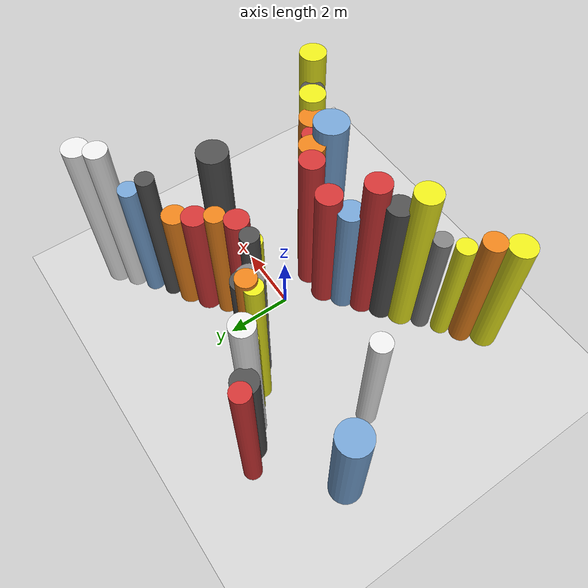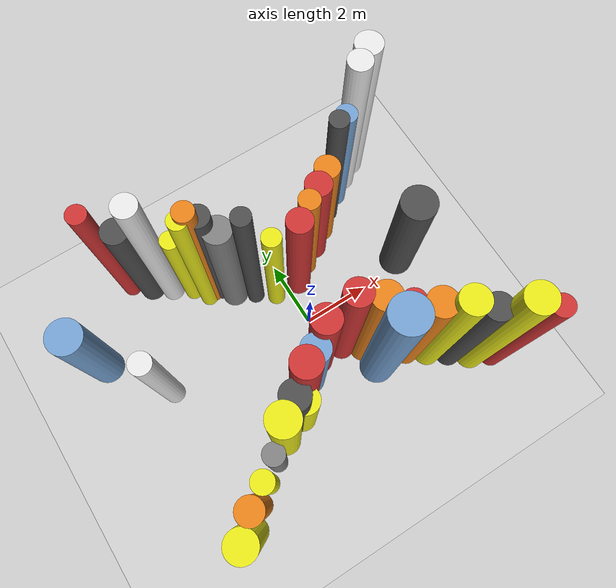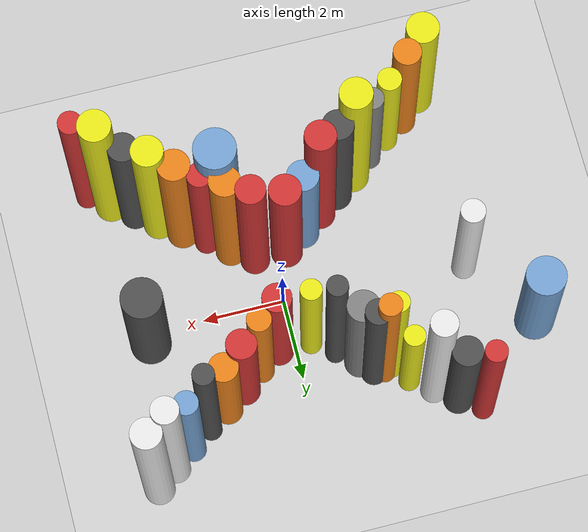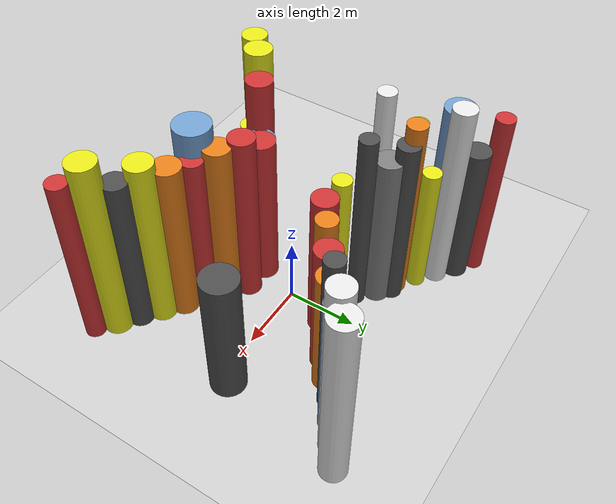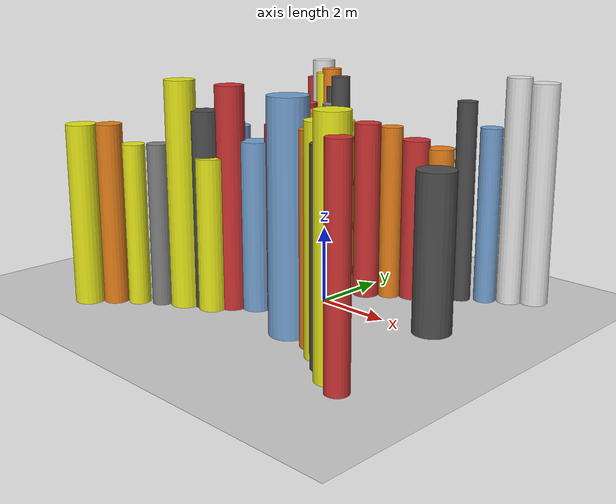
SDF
<?xml version='1.0'?>
<sdf version='1.6'>
  <world name='routeA_rl_v1__dense_recovery__rl_val__bottleneck_corridor__000103'>
    <!-- Sun light -->
    <light name='sun' type='directional'>
      <cast_shadows>1</cast_shadows>
      <pose>0 0 10 0 0 0</pose>
      <diffuse>0.8 0.8 0.8 1</diffuse>
      <specular>0.2 0.2 0.2 1</specular>
      <attenuation>
        <range>1000</range>
        <constant>0.9</constant>
        <linear>0.01</linear>
        <quadratic>0.001</quadratic>
      </attenuation>
      <direction>-0.5 0.1 -0.9</direction>
    </light>

    <!-- Ground plane -->
    <model name='ground_plane'>
      <static>1</static>
      <link name='link'>
        <collision name='collision'>
          <geometry>
            <plane>
              <normal>0 0 1</normal>
              <size>100 100</size>
            </plane>
          </geometry>
          <surface>
            <contact>
              <collide_bitmask>65535</collide_bitmask>
              <ode/>
            </contact>
            <friction>
              <ode>
                <mu>100</mu>
                <mu2>50</mu2>
              </ode>
              <torsional><ode/></torsional>
            </friction>
            <bounce/>
          </surface>
          <max_contacts>10</max_contacts>
        </collision>
        <visual name='visual'>
          <cast_shadows>0</cast_shadows>
          <geometry>
            <plane>
              <normal>0 0 1</normal>
              <size>100 100</size>
            </plane>
          </geometry>
          <material>
            <script>
              <uri>file://media/materials/scripts/gazebo.material</uri>
              <n>Gazebo/Grey</n>
            </script>
          </material>
        </visual>
      </link>
    </model>

    <!-- Environment -->
    <magnetic_field>6e-06 2.3e-05 -4.2e-05</magnetic_field>
    <atmosphere type='adiabatic'/>
    <physics name='default_physics' default='0' type='ode'>
      <gravity>0 0 -9.8</gravity>
      <max_step_size>0.004</max_step_size>
      <real_time_factor>1</real_time_factor>
      <real_time_update_rate>250</real_time_update_rate>
    </physics>
    <scene>
      <ambient>0.4 0.4 0.4 1</ambient>
      <background>0.7 0.7 0.7 1</background>
      <shadows>1</shadows>
    </scene>
    <wind/>
    <spherical_coordinates>
      <surface_model>EARTH_WGS84</surface_model>
      <latitude_deg>0</latitude_deg>
      <longitude_deg>0</longitude_deg>
      <elevation>0</elevation>
      <heading_deg>0</heading_deg>
    </spherical_coordinates>

    <!-- ============ OBSTACLES (40) ============ -->
    <model name='funnel_l_0'>
      <static>1</static>
      <link name='link'>
        <visual name='visual'>
          <geometry>
            <cylinder>
              <radius>0.3390</radius>
              <length>4.7372</length>
            </cylinder>
          </geometry>
          <material>
            <script>
              <n>Gazebo/Orange</n>
              <uri>file://media/materials/scripts/gazebo.material</uri>
            </script>
            <ambient>0.9 0.5 0.1 1</ambient>
          </material>
        </visual>
        <collision name='collision'>
          <geometry>
            <cylinder>
              <radius>0.3390</radius>
              <length>4.7372</length>
            </cylinder>
          </geometry>
          <max_contacts>10</max_contacts>
          <surface>
            <contact><ode/></contact>
            <bounce/>
            <friction>
              <ode><mu>1</mu><mu2>1</mu2></ode>
              <torsional><ode/></torsional>
            </friction>
          </surface>
        </collision>
      </link>
      <pose>-4.0000 -3.8000 2.3686 0 0 0.0000</pose>
    </model>

    <model name='funnel_r_0'>
      <static>1</static>
      <link name='link'>
        <visual name='visual'>
          <geometry>
            <cylinder>
              <radius>0.2659</radius>
              <length>5.3199</length>
            </cylinder>
          </geometry>
          <material>
            <script>
              <n>Gazebo/Red</n>
              <uri>file://media/materials/scripts/gazebo.material</uri>
            </script>
            <ambient>0.8 0.2 0.2 1</ambient>
          </material>
        </visual>
        <collision name='collision'>
          <geometry>
            <cylinder>
              <radius>0.2659</radius>
              <length>5.3199</length>
            </cylinder>
          </geometry>
          <max_contacts>10</max_contacts>
          <surface>
            <contact><ode/></contact>
            <bounce/>
            <friction>
              <ode><mu>1</mu><mu2>1</mu2></ode>
              <torsional><ode/></torsional>
            </friction>
          </surface>
        </collision>
      </link>
      <pose>-4.0000 3.8000 2.6599 0 0 0.0000</pose>
    </model>

    <model name='funnel_l_1'>
      <static>1</static>
      <link name='link'>
        <visual name='visual'>
          <geometry>
            <cylinder>
              <radius>0.2905</radius>
              <length>4.2332</length>
            </cylinder>
          </geometry>
          <material>
            <script>
              <n>Gazebo/Yellow</n>
              <uri>file://media/materials/scripts/gazebo.material</uri>
            </script>
            <ambient>0.9 0.9 0.1 1</ambient>
          </material>
        </visual>
        <collision name='collision'>
          <geometry>
            <cylinder>
              <radius>0.2905</radius>
              <length>4.2332</length>
            </cylinder>
          </geometry>
          <max_contacts>10</max_contacts>
          <surface>
            <contact><ode/></contact>
            <bounce/>
            <friction>
              <ode><mu>1</mu><mu2>1</mu2></ode>
              <torsional><ode/></torsional>
            </friction>
          </surface>
        </collision>
      </link>
      <pose>-3.4857 -3.4286 2.1166 0 0 0.0000</pose>
    </model>

    <model name='funnel_r_1'>
      <static>1</static>
      <link name='link'>
        <visual name='visual'>
          <geometry>
            <cylinder>
              <radius>0.3638</radius>
              <length>4.4512</length>
            </cylinder>
          </geometry>
          <material>
            <script>
              <n>Gazebo/DarkGrey</n>
              <uri>file://media/materials/scripts/gazebo.material</uri>
            </script>
            <ambient>0.3 0.3 0.3 1</ambient>
          </material>
        </visual>
        <collision name='collision'>
          <geometry>
            <cylinder>
              <radius>0.3638</radius>
              <length>4.4512</length>
            </cylinder>
          </geometry>
          <max_contacts>10</max_contacts>
          <surface>
            <contact><ode/></contact>
            <bounce/>
            <friction>
              <ode><mu>1</mu><mu2>1</mu2></ode>
              <torsional><ode/></torsional>
            </friction>
          </surface>
        </collision>
      </link>
      <pose>-3.4857 3.4286 2.2256 0 0 0.0000</pose>
    </model>

    <model name='funnel_l_2'>
      <static>1</static>
      <link name='link'>
        <visual name='visual'>
          <geometry>
            <cylinder>
              <radius>0.2776</radius>
              <length>4.2553</length>
            </cylinder>
          </geometry>
          <material>
            <script>
              <n>Gazebo/Grey</n>
              <uri>file://media/materials/scripts/gazebo.material</uri>
            </script>
            <ambient>0.5 0.5 0.5 1</ambient>
          </material>
        </visual>
        <collision name='collision'>
          <geometry>
            <cylinder>
              <radius>0.2776</radius>
              <length>4.2553</length>
            </cylinder>
          </geometry>
          <max_contacts>10</max_contacts>
          <surface>
            <contact><ode/></contact>
            <bounce/>
            <friction>
              <ode><mu>1</mu><mu2>1</mu2></ode>
              <torsional><ode/></torsional>
            </friction>
          </surface>
        </collision>
      </link>
      <pose>-2.9714 -3.0571 2.1276 0 0 0.0000</pose>
    </model>

    <model name='funnel_r_2'>
      <static>1</static>
      <link name='link'>
        <visual name='visual'>
          <geometry>
            <cylinder>
              <radius>0.3240</radius>
              <length>5.9553</length>
            </cylinder>
          </geometry>
          <material>
            <script>
              <n>Gazebo/White</n>
              <uri>file://media/materials/scripts/gazebo.material</uri>
            </script>
            <ambient>0.9 0.9 0.9 1</ambient>
          </material>
        </visual>
        <collision name='collision'>
          <geometry>
            <cylinder>
              <radius>0.3240</radius>
              <length>5.9553</length>
            </cylinder>
          </geometry>
          <max_contacts>10</max_contacts>
          <surface>
            <contact><ode/></contact>
            <bounce/>
            <friction>
              <ode><mu>1</mu><mu2>1</mu2></ode>
              <torsional><ode/></torsional>
            </friction>
          </surface>
        </collision>
      </link>
      <pose>-2.9714 3.0571 2.9776 0 0 0.0000</pose>
    </model>

    <model name='funnel_l_3'>
      <static>1</static>
      <link name='link'>
        <visual name='visual'>
          <geometry>
            <cylinder>
              <radius>0.3952</radius>
              <length>5.8973</length>
            </cylinder>
          </geometry>
          <material>
            <script>
              <n>Gazebo/Yellow</n>
              <uri>file://media/materials/scripts/gazebo.material</uri>
            </script>
            <ambient>0.9 0.9 0.1 1</ambient>
          </material>
        </visual>
        <collision name='collision'>
          <geometry>
            <cylinder>
              <radius>0.3952</radius>
              <length>5.8973</length>
            </cylinder>
          </geometry>
          <max_contacts>10</max_contacts>
          <surface>
            <contact><ode/></contact>
            <bounce/>
            <friction>
              <ode><mu>1</mu><mu2>1</mu2></ode>
              <torsional><ode/></torsional>
            </friction>
          </surface>
        </collision>
      </link>
      <pose>-2.4571 -2.6857 2.9487 0 0 0.0000</pose>
    </model>

    <model name='funnel_r_3'>
      <static>1</static>
      <link name='link'>
        <visual name='visual'>
          <geometry>
            <cylinder>
              <radius>0.2582</radius>
              <length>4.0964</length>
            </cylinder>
          </geometry>
          <material>
            <script>
              <n>Gazebo/Yellow</n>
              <uri>file://media/materials/scripts/gazebo.material</uri>
            </script>
            <ambient>0.9 0.9 0.1 1</ambient>
          </material>
        </visual>
        <collision name='collision'>
          <geometry>
            <cylinder>
              <radius>0.2582</radius>
              <length>4.0964</length>
            </cylinder>
          </geometry>
          <max_contacts>10</max_contacts>
          <surface>
            <contact><ode/></contact>
            <bounce/>
            <friction>
              <ode><mu>1</mu><mu2>1</mu2></ode>
              <torsional><ode/></torsional>
            </friction>
          </surface>
        </collision>
      </link>
      <pose>-2.4571 2.6857 2.0482 0 0 0.0000</pose>
    </model>

    <model name='funnel_l_4'>
      <static>1</static>
      <link name='link'>
        <visual name='visual'>
          <geometry>
            <cylinder>
              <radius>0.3770</radius>
              <length>5.1388</length>
            </cylinder>
          </geometry>
          <material>
            <script>
              <n>Gazebo/DarkGrey</n>
              <uri>file://media/materials/scripts/gazebo.material</uri>
            </script>
            <ambient>0.3 0.3 0.3 1</ambient>
          </material>
        </visual>
        <collision name='collision'>
          <geometry>
            <cylinder>
              <radius>0.3770</radius>
              <length>5.1388</length>
            </cylinder>
          </geometry>
          <max_contacts>10</max_contacts>
          <surface>
            <contact><ode/></contact>
            <bounce/>
            <friction>
              <ode><mu>1</mu><mu2>1</mu2></ode>
              <torsional><ode/></torsional>
            </friction>
          </surface>
        </collision>
      </link>
      <pose>-1.9429 -2.3143 2.5694 0 0 0.0000</pose>
    </model>

    <model name='funnel_r_4'>
      <static>1</static>
      <link name='link'>
        <visual name='visual'>
          <geometry>
            <cylinder>
              <radius>0.2744</radius>
              <length>5.8317</length>
            </cylinder>
          </geometry>
          <material>
            <script>
              <n>Gazebo/Orange</n>
              <uri>file://media/materials/scripts/gazebo.material</uri>
            </script>
            <ambient>0.9 0.5 0.1 1</ambient>
          </material>
        </visual>
        <collision name='collision'>
          <geometry>
            <cylinder>
              <radius>0.2744</radius>
              <length>5.8317</length>
            </cylinder>
          </geometry>
          <max_contacts>10</max_contacts>
          <surface>
            <contact><ode/></contact>
            <bounce/>
            <friction>
              <ode><mu>1</mu><mu2>1</mu2></ode>
              <torsional><ode/></torsional>
            </friction>
          </surface>
        </collision>
      </link>
      <pose>-1.9429 2.3143 2.9159 0 0 0.0000</pose>
    </model>

    <model name='funnel_l_5'>
      <static>1</static>
      <link name='link'>
        <visual name='visual'>
          <geometry>
            <cylinder>
              <radius>0.3774</radius>
              <length>5.7852</length>
            </cylinder>
          </geometry>
          <material>
            <script>
              <n>Gazebo/Red</n>
              <uri>file://media/materials/scripts/gazebo.material</uri>
            </script>
            <ambient>0.8 0.2 0.2 1</ambient>
          </material>
        </visual>
        <collision name='collision'>
          <geometry>
            <cylinder>
              <radius>0.3774</radius>
              <length>5.7852</length>
            </cylinder>
          </geometry>
          <max_contacts>10</max_contacts>
          <surface>
            <contact><ode/></contact>
            <bounce/>
            <friction>
              <ode><mu>1</mu><mu2>1</mu2></ode>
              <torsional><ode/></torsional>
            </friction>
          </surface>
        </collision>
      </link>
      <pose>-1.4286 -1.9429 2.8926 0 0 0.0000</pose>
    </model>

    <model name='funnel_r_5'>
      <static>1</static>
      <link name='link'>
        <visual name='visual'>
          <geometry>
            <cylinder>
              <radius>0.3835</radius>
              <length>4.9168</length>
            </cylinder>
          </geometry>
          <material>
            <script>
              <n>Gazebo/Grey</n>
              <uri>file://media/materials/scripts/gazebo.material</uri>
            </script>
            <ambient>0.5 0.5 0.5 1</ambient>
          </material>
        </visual>
        <collision name='collision'>
          <geometry>
            <cylinder>
              <radius>0.3835</radius>
              <length>4.9168</length>
            </cylinder>
          </geometry>
          <max_contacts>10</max_contacts>
          <surface>
            <contact><ode/></contact>
            <bounce/>
            <friction>
              <ode><mu>1</mu><mu2>1</mu2></ode>
              <torsional><ode/></torsional>
            </friction>
          </surface>
        </collision>
      </link>
      <pose>-1.4286 1.9429 2.4584 0 0 0.0000</pose>
    </model>

    <model name='funnel_l_6'>
      <static>1</static>
      <link name='link'>
        <visual name='visual'>
          <geometry>
            <cylinder>
              <radius>0.3860</radius>
              <length>4.3995</length>
            </cylinder>
          </geometry>
          <material>
            <script>
              <n>Gazebo/Blue</n>
              <uri>file://media/materials/scripts/gazebo.material</uri>
            </script>
            <ambient>0.447 0.624 0.812 1</ambient>
          </material>
        </visual>
        <collision name='collision'>
          <geometry>
            <cylinder>
              <radius>0.3860</radius>
              <length>4.3995</length>
            </cylinder>
          </geometry>
          <max_contacts>10</max_contacts>
          <surface>
            <contact><ode/></contact>
            <bounce/>
            <friction>
              <ode><mu>1</mu><mu2>1</mu2></ode>
              <torsional><ode/></torsional>
            </friction>
          </surface>
        </collision>
      </link>
      <pose>-0.9143 -1.5714 2.1998 0 0 0.0000</pose>
    </model>

    <model name='funnel_r_6'>
      <static>1</static>
      <link name='link'>
        <visual name='visual'>
          <geometry>
            <cylinder>
              <radius>0.2541</radius>
              <length>5.7434</length>
            </cylinder>
          </geometry>
          <material>
            <script>
              <n>Gazebo/DarkGrey</n>
              <uri>file://media/materials/scripts/gazebo.material</uri>
            </script>
            <ambient>0.3 0.3 0.3 1</ambient>
          </material>
        </visual>
        <collision name='collision'>
          <geometry>
            <cylinder>
              <radius>0.2541</radius>
              <length>5.7434</length>
            </cylinder>
          </geometry>
          <max_contacts>10</max_contacts>
          <surface>
            <contact><ode/></contact>
            <bounce/>
            <friction>
              <ode><mu>1</mu><mu2>1</mu2></ode>
              <torsional><ode/></torsional>
            </friction>
          </surface>
        </collision>
      </link>
      <pose>-0.9143 1.5714 2.8717 0 0 0.0000</pose>
    </model>

    <model name='funnel_l_7'>
      <static>1</static>
      <link name='link'>
        <visual name='visual'>
          <geometry>
            <cylinder>
              <radius>0.3898</radius>
              <length>4.8210</length>
            </cylinder>
          </geometry>
          <material>
            <script>
              <n>Gazebo/Red</n>
              <uri>file://media/materials/scripts/gazebo.material</uri>
            </script>
            <ambient>0.8 0.2 0.2 1</ambient>
          </material>
        </visual>
        <collision name='collision'>
          <geometry>
            <cylinder>
              <radius>0.3898</radius>
              <length>4.8210</length>
            </cylinder>
          </geometry>
          <max_contacts>10</max_contacts>
          <surface>
            <contact><ode/></contact>
            <bounce/>
            <friction>
              <ode><mu>1</mu><mu2>1</mu2></ode>
              <torsional><ode/></torsional>
            </friction>
          </surface>
        </collision>
      </link>
      <pose>-0.4000 -1.2000 2.4105 0 0 0.0000</pose>
    </model>

    <model name='funnel_r_7'>
      <static>1</static>
      <link name='link'>
        <visual name='visual'>
          <geometry>
            <cylinder>
              <radius>0.2602</radius>
              <length>4.6596</length>
            </cylinder>
          </geometry>
          <material>
            <script>
              <n>Gazebo/Yellow</n>
              <uri>file://media/materials/scripts/gazebo.material</uri>
            </script>
            <ambient>0.9 0.9 0.1 1</ambient>
          </material>
        </visual>
        <collision name='collision'>
          <geometry>
            <cylinder>
              <radius>0.2602</radius>
              <length>4.6596</length>
            </cylinder>
          </geometry>
          <max_contacts>10</max_contacts>
          <surface>
            <contact><ode/></contact>
            <bounce/>
            <friction>
              <ode><mu>1</mu><mu2>1</mu2></ode>
              <torsional><ode/></torsional>
            </friction>
          </surface>
        </collision>
      </link>
      <pose>-0.4000 1.2000 2.3298 0 0 0.0000</pose>
    </model>

    <model name='funnel_out_l_0'>
      <static>1</static>
      <link name='link'>
        <visual name='visual'>
          <geometry>
            <cylinder>
              <radius>0.3619</radius>
              <length>5.4518</length>
            </cylinder>
          </geometry>
          <material>
            <script>
              <n>Gazebo/Red</n>
              <uri>file://media/materials/scripts/gazebo.material</uri>
            </script>
            <ambient>0.8 0.2 0.2 1</ambient>
          </material>
        </visual>
        <collision name='collision'>
          <geometry>
            <cylinder>
              <radius>0.3619</radius>
              <length>5.4518</length>
            </cylinder>
          </geometry>
          <max_contacts>10</max_contacts>
          <surface>
            <contact><ode/></contact>
            <bounce/>
            <friction>
              <ode><mu>1</mu><mu2>1</mu2></ode>
              <torsional><ode/></torsional>
            </friction>
          </surface>
        </collision>
      </link>
      <pose>0.4000 -1.2000 2.7259 0 0 0.0000</pose>
    </model>

    <model name='funnel_out_r_0'>
      <static>1</static>
      <link name='link'>
        <visual name='visual'>
          <geometry>
            <cylinder>
              <radius>0.3518</radius>
              <length>4.6799</length>
            </cylinder>
          </geometry>
          <material>
            <script>
              <n>Gazebo/Red</n>
              <uri>file://media/materials/scripts/gazebo.material</uri>
            </script>
            <ambient>0.8 0.2 0.2 1</ambient>
          </material>
        </visual>
        <collision name='collision'>
          <geometry>
            <cylinder>
              <radius>0.3518</radius>
              <length>4.6799</length>
            </cylinder>
          </geometry>
          <max_contacts>10</max_contacts>
          <surface>
            <contact><ode/></contact>
            <bounce/>
            <friction>
              <ode><mu>1</mu><mu2>1</mu2></ode>
              <torsional><ode/></torsional>
            </friction>
          </surface>
        </collision>
      </link>
      <pose>0.4000 1.2000 2.3400 0 0 0.0000</pose>
    </model>

    <model name='funnel_out_l_1'>
      <static>1</static>
      <link name='link'>
        <visual name='visual'>
          <geometry>
            <cylinder>
              <radius>0.3798</radius>
              <length>5.3452</length>
            </cylinder>
          </geometry>
          <material>
            <script>
              <n>Gazebo/Orange</n>
              <uri>file://media/materials/scripts/gazebo.material</uri>
            </script>
            <ambient>0.9 0.5 0.1 1</ambient>
          </material>
        </visual>
        <collision name='collision'>
          <geometry>
            <cylinder>
              <radius>0.3798</radius>
              <length>5.3452</length>
            </cylinder>
          </geometry>
          <max_contacts>10</max_contacts>
          <surface>
            <contact><ode/></contact>
            <bounce/>
            <friction>
              <ode><mu>1</mu><mu2>1</mu2></ode>
              <torsional><ode/></torsional>
            </friction>
          </surface>
        </collision>
      </link>
      <pose>0.9143 -1.5714 2.6726 0 0 0.0000</pose>
    </model>

    <model name='funnel_out_r_1'>
      <static>1</static>
      <link name='link'>
        <visual name='visual'>
          <geometry>
            <cylinder>
              <radius>0.2928</radius>
              <length>4.6004</length>
            </cylinder>
          </geometry>
          <material>
            <script>
              <n>Gazebo/Orange</n>
              <uri>file://media/materials/scripts/gazebo.material</uri>
            </script>
            <ambient>0.9 0.5 0.1 1</ambient>
          </material>
        </visual>
        <collision name='collision'>
          <geometry>
            <cylinder>
              <radius>0.2928</radius>
              <length>4.6004</length>
            </cylinder>
          </geometry>
          <max_contacts>10</max_contacts>
          <surface>
            <contact><ode/></contact>
            <bounce/>
            <friction>
              <ode><mu>1</mu><mu2>1</mu2></ode>
              <torsional><ode/></torsional>
            </friction>
          </surface>
        </collision>
      </link>
      <pose>0.9143 1.5714 2.3002 0 0 0.0000</pose>
    </model>

    <model name='funnel_out_l_2'>
      <static>1</static>
      <link name='link'>
        <visual name='visual'>
          <geometry>
            <cylinder>
              <radius>0.2998</radius>
              <length>5.1124</length>
            </cylinder>
          </geometry>
          <material>
            <script>
              <n>Gazebo/Red</n>
              <uri>file://media/materials/scripts/gazebo.material</uri>
            </script>
            <ambient>0.8 0.2 0.2 1</ambient>
          </material>
        </visual>
        <collision name='collision'>
          <geometry>
            <cylinder>
              <radius>0.2998</radius>
              <length>5.1124</length>
            </cylinder>
          </geometry>
          <max_contacts>10</max_contacts>
          <surface>
            <contact><ode/></contact>
            <bounce/>
            <friction>
              <ode><mu>1</mu><mu2>1</mu2></ode>
              <torsional><ode/></torsional>
            </friction>
          </surface>
        </collision>
      </link>
      <pose>1.4286 -1.9429 2.5562 0 0 0.0000</pose>
    </model>

    <model name='funnel_out_r_2'>
      <static>1</static>
      <link name='link'>
        <visual name='visual'>
          <geometry>
            <cylinder>
              <radius>0.3661</radius>
              <length>4.2683</length>
            </cylinder>
          </geometry>
          <material>
            <script>
              <n>Gazebo/Red</n>
              <uri>file://media/materials/scripts/gazebo.material</uri>
            </script>
            <ambient>0.8 0.2 0.2 1</ambient>
          </material>
        </visual>
        <collision name='collision'>
          <geometry>
            <cylinder>
              <radius>0.3661</radius>
              <length>4.2683</length>
            </cylinder>
          </geometry>
          <max_contacts>10</max_contacts>
          <surface>
            <contact><ode/></contact>
            <bounce/>
            <friction>
              <ode><mu>1</mu><mu2>1</mu2></ode>
              <torsional><ode/></torsional>
            </friction>
          </surface>
        </collision>
      </link>
      <pose>1.4286 1.9429 2.1342 0 0 0.0000</pose>
    </model>

    <model name='funnel_out_l_3'>
      <static>1</static>
      <link name='link'>
        <visual name='visual'>
          <geometry>
            <cylinder>
              <radius>0.3909</radius>
              <length>5.1257</length>
            </cylinder>
          </geometry>
          <material>
            <script>
              <n>Gazebo/Orange</n>
              <uri>file://media/materials/scripts/gazebo.material</uri>
            </script>
            <ambient>0.9 0.5 0.1 1</ambient>
          </material>
        </visual>
        <collision name='collision'>
          <geometry>
            <cylinder>
              <radius>0.3909</radius>
              <length>5.1257</length>
            </cylinder>
          </geometry>
          <max_contacts>10</max_contacts>
          <surface>
            <contact><ode/></contact>
            <bounce/>
            <friction>
              <ode><mu>1</mu><mu2>1</mu2></ode>
              <torsional><ode/></torsional>
            </friction>
          </surface>
        </collision>
      </link>
      <pose>1.9429 -2.3143 2.5629 0 0 0.0000</pose>
    </model>

    <model name='funnel_out_r_3'>
      <static>1</static>
      <link name='link'>
        <visual name='visual'>
          <geometry>
            <cylinder>
              <radius>0.3529</radius>
              <length>4.0607</length>
            </cylinder>
          </geometry>
          <material>
            <script>
              <n>Gazebo/Orange</n>
              <uri>file://media/materials/scripts/gazebo.material</uri>
            </script>
            <ambient>0.9 0.5 0.1 1</ambient>
          </material>
        </visual>
        <collision name='collision'>
          <geometry>
            <cylinder>
              <radius>0.3529</radius>
              <length>4.0607</length>
            </cylinder>
          </geometry>
          <max_contacts>10</max_contacts>
          <surface>
            <contact><ode/></contact>
            <bounce/>
            <friction>
              <ode><mu>1</mu><mu2>1</mu2></ode>
              <torsional><ode/></torsional>
            </friction>
          </surface>
        </collision>
      </link>
      <pose>1.9429 2.3143 2.0303 0 0 0.0000</pose>
    </model>

    <model name='funnel_out_l_4'>
      <static>1</static>
      <link name='link'>
        <visual name='visual'>
          <geometry>
            <cylinder>
              <radius>0.3862</radius>
              <length>5.4325</length>
            </cylinder>
          </geometry>
          <material>
            <script>
              <n>Gazebo/Yellow</n>
              <uri>file://media/materials/scripts/gazebo.material</uri>
            </script>
            <ambient>0.9 0.9 0.1 1</ambient>
          </material>
        </visual>
        <collision name='collision'>
          <geometry>
            <cylinder>
              <radius>0.3862</radius>
              <length>5.4325</length>
            </cylinder>
          </geometry>
          <max_contacts>10</max_contacts>
          <surface>
            <contact><ode/></contact>
            <bounce/>
            <friction>
              <ode><mu>1</mu><mu2>1</mu2></ode>
              <torsional><ode/></torsional>
            </friction>
          </surface>
        </collision>
      </link>
      <pose>2.4571 -2.6857 2.7162 0 0 0.0000</pose>
    </model>

    <model name='funnel_out_r_4'>
      <static>1</static>
      <link name='link'>
        <visual name='visual'>
          <geometry>
            <cylinder>
              <radius>0.2620</radius>
              <length>5.2981</length>
            </cylinder>
          </geometry>
          <material>
            <script>
              <n>Gazebo/DarkGrey</n>
              <uri>file://media/materials/scripts/gazebo.material</uri>
            </script>
            <ambient>0.3 0.3 0.3 1</ambient>
          </material>
        </visual>
        <collision name='collision'>
          <geometry>
            <cylinder>
              <radius>0.2620</radius>
              <length>5.2981</length>
            </cylinder>
          </geometry>
          <max_contacts>10</max_contacts>
          <surface>
            <contact><ode/></contact>
            <bounce/>
            <friction>
              <ode><mu>1</mu><mu2>1</mu2></ode>
              <torsional><ode/></torsional>
            </friction>
          </surface>
        </collision>
      </link>
      <pose>2.4571 2.6857 2.6491 0 0 0.0000</pose>
    </model>

    <model name='funnel_out_l_5'>
      <static>1</static>
      <link name='link'>
        <visual name='visual'>
          <geometry>
            <cylinder>
              <radius>0.3601</radius>
              <length>5.0372</length>
            </cylinder>
          </geometry>
          <material>
            <script>
              <n>Gazebo/DarkGrey</n>
              <uri>file://media/materials/scripts/gazebo.material</uri>
            </script>
            <ambient>0.3 0.3 0.3 1</ambient>
          </material>
        </visual>
        <collision name='collision'>
          <geometry>
            <cylinder>
              <radius>0.3601</radius>
              <length>5.0372</length>
            </cylinder>
          </geometry>
          <max_contacts>10</max_contacts>
          <surface>
            <contact><ode/></contact>
            <bounce/>
            <friction>
              <ode><mu>1</mu><mu2>1</mu2></ode>
              <torsional><ode/></torsional>
            </friction>
          </surface>
        </collision>
      </link>
      <pose>2.9714 -3.0571 2.5186 0 0 0.0000</pose>
    </model>

    <model name='funnel_out_r_5'>
      <static>1</static>
      <link name='link'>
        <visual name='visual'>
          <geometry>
            <cylinder>
              <radius>0.2914</radius>
              <length>4.6348</length>
            </cylinder>
          </geometry>
          <material>
            <script>
              <n>Gazebo/Blue</n>
              <uri>file://media/materials/scripts/gazebo.material</uri>
            </script>
            <ambient>0.447 0.624 0.812 1</ambient>
          </material>
        </visual>
        <collision name='collision'>
          <geometry>
            <cylinder>
              <radius>0.2914</radius>
              <length>4.6348</length>
            </cylinder>
          </geometry>
          <max_contacts>10</max_contacts>
          <surface>
            <contact><ode/></contact>
            <bounce/>
            <friction>
              <ode><mu>1</mu><mu2>1</mu2></ode>
              <torsional><ode/></torsional>
            </friction>
          </surface>
        </collision>
      </link>
      <pose>2.9714 3.0571 2.3174 0 0 0.0000</pose>
    </model>

    <model name='funnel_out_l_6'>
      <static>1</static>
      <link name='link'>
        <visual name='visual'>
          <geometry>
            <cylinder>
              <radius>0.3994</radius>
              <length>5.8460</length>
            </cylinder>
          </geometry>
          <material>
            <script>
              <n>Gazebo/Yellow</n>
              <uri>file://media/materials/scripts/gazebo.material</uri>
            </script>
            <ambient>0.9 0.9 0.1 1</ambient>
          </material>
        </visual>
        <collision name='collision'>
          <geometry>
            <cylinder>
              <radius>0.3994</radius>
              <length>5.8460</length>
            </cylinder>
          </geometry>
          <max_contacts>10</max_contacts>
          <surface>
            <contact><ode/></contact>
            <bounce/>
            <friction>
              <ode><mu>1</mu><mu2>1</mu2></ode>
              <torsional><ode/></torsional>
            </friction>
          </surface>
        </collision>
      </link>
      <pose>3.4857 -3.4286 2.9230 0 0 0.0000</pose>
    </model>

    <model name='funnel_out_r_6'>
      <static>1</static>
      <link name='link'>
        <visual name='visual'>
          <geometry>
            <cylinder>
              <radius>0.3291</radius>
              <length>5.9279</length>
            </cylinder>
          </geometry>
          <material>
            <script>
              <n>Gazebo/White</n>
              <uri>file://media/materials/scripts/gazebo.material</uri>
            </script>
            <ambient>0.9 0.9 0.9 1</ambient>
          </material>
        </visual>
        <collision name='collision'>
          <geometry>
            <cylinder>
              <radius>0.3291</radius>
              <length>5.9279</length>
            </cylinder>
          </geometry>
          <max_contacts>10</max_contacts>
          <surface>
            <contact><ode/></contact>
            <bounce/>
            <friction>
              <ode><mu>1</mu><mu2>1</mu2></ode>
              <torsional><ode/></torsional>
            </friction>
          </surface>
        </collision>
      </link>
      <pose>3.4857 3.4286 2.9639 0 0 0.0000</pose>
    </model>

    <model name='funnel_out_l_7'>
      <static>1</static>
      <link name='link'>
        <visual name='visual'>
          <geometry>
            <cylinder>
              <radius>0.2870</radius>
              <length>5.4015</length>
            </cylinder>
          </geometry>
          <material>
            <script>
              <n>Gazebo/Red</n>
              <uri>file://media/materials/scripts/gazebo.material</uri>
            </script>
            <ambient>0.8 0.2 0.2 1</ambient>
          </material>
        </visual>
        <collision name='collision'>
          <geometry>
            <cylinder>
              <radius>0.2870</radius>
              <length>5.4015</length>
            </cylinder>
          </geometry>
          <max_contacts>10</max_contacts>
          <surface>
            <contact><ode/></contact>
            <bounce/>
            <friction>
              <ode><mu>1</mu><mu2>1</mu2></ode>
              <torsional><ode/></torsional>
            </friction>
          </surface>
        </collision>
      </link>
      <pose>4.0000 -3.8000 2.7008 0 0 0.0000</pose>
    </model>

    <model name='funnel_out_r_7'>
      <static>1</static>
      <link name='link'>
        <visual name='visual'>
          <geometry>
            <cylinder>
              <radius>0.3707</radius>
              <length>5.7938</length>
            </cylinder>
          </geometry>
          <material>
            <script>
              <n>Gazebo/White</n>
              <uri>file://media/materials/scripts/gazebo.material</uri>
            </script>
            <ambient>0.9 0.9 0.9 1</ambient>
          </material>
        </visual>
        <collision name='collision'>
          <geometry>
            <cylinder>
              <radius>0.3707</radius>
              <length>5.7938</length>
            </cylinder>
          </geometry>
          <max_contacts>10</max_contacts>
          <surface>
            <contact><ode/></contact>
            <bounce/>
            <friction>
              <ode><mu>1</mu><mu2>1</mu2></ode>
              <torsional><ode/></torsional>
            </friction>
          </surface>
        </collision>
      </link>
      <pose>4.0000 3.8000 2.8969 0 0 0.0000</pose>
    </model>

    <model name='bn_scatter_0'>
      <static>1</static>
      <link name='link'>
        <visual name='visual'>
          <geometry>
            <cylinder>
              <radius>0.4822</radius>
              <length>3.8046</length>
            </cylinder>
          </geometry>
          <material>
            <script>
              <n>Gazebo/Blue</n>
              <uri>file://media/materials/scripts/gazebo.material</uri>
            </script>
            <ambient>0.447 0.624 0.812 1</ambient>
          </material>
        </visual>
        <collision name='collision'>
          <geometry>
            <cylinder>
              <radius>0.4822</radius>
              <length>3.8046</length>
            </cylinder>
          </geometry>
          <max_contacts>10</max_contacts>
          <surface>
            <contact><ode/></contact>
            <bounce/>
            <friction>
              <ode><mu>1</mu><mu2>1</mu2></ode>
              <torsional><ode/></torsional>
            </friction>
          </surface>
        </collision>
      </link>
      <pose>-5.7952 1.9863 1.9023 0 0 0.0000</pose>
    </model>

    <model name='bn_scatter_1'>
      <static>1</static>
      <link name='link'>
        <visual name='visual'>
          <geometry>
            <cylinder>
              <radius>0.2537</radius>
              <length>5.7089</length>
            </cylinder>
          </geometry>
          <material>
            <script>
              <n>Gazebo/Yellow</n>
              <uri>file://media/materials/scripts/gazebo.material</uri>
            </script>
            <ambient>0.9 0.9 0.1 1</ambient>
          </material>
        </visual>
        <collision name='collision'>
          <geometry>
            <cylinder>
              <radius>0.2537</radius>
              <length>5.7089</length>
            </cylinder>
          </geometry>
          <max_contacts>10</max_contacts>
          <surface>
            <contact><ode/></contact>
            <bounce/>
            <friction>
              <ode><mu>1</mu><mu2>1</mu2></ode>
              <torsional><ode/></torsional>
            </friction>
          </surface>
        </collision>
      </link>
      <pose>-2.1520 2.2600 2.8544 0 0 0.0000</pose>
    </model>

    <model name='bn_scatter_2'>
      <static>1</static>
      <link name='link'>
        <visual name='visual'>
          <geometry>
            <cylinder>
              <radius>0.4980</radius>
              <length>4.0332</length>
            </cylinder>
          </geometry>
          <material>
            <script>
              <n>Gazebo/DarkGrey</n>
              <uri>file://media/materials/scripts/gazebo.material</uri>
            </script>
            <ambient>0.3 0.3 0.3 1</ambient>
          </material>
        </visual>
        <collision name='collision'>
          <geometry>
            <cylinder>
              <radius>0.4980</radius>
              <length>4.0332</length>
            </cylinder>
          </geometry>
          <max_contacts>10</max_contacts>
          <surface>
            <contact><ode/></contact>
            <bounce/>
            <friction>
              <ode><mu>1</mu><mu2>1</mu2></ode>
              <torsional><ode/></torsional>
            </friction>
          </surface>
        </collision>
      </link>
      <pose>3.3679 0.2489 2.0166 0 0 0.0000</pose>
    </model>

    <model name='bn_scatter_3'>
      <static>1</static>
      <link name='link'>
        <visual name='visual'>
          <geometry>
            <cylinder>
              <radius>0.3669</radius>
              <length>3.9779</length>
            </cylinder>
          </geometry>
          <material>
            <script>
              <n>Gazebo/Yellow</n>
              <uri>file://media/materials/scripts/gazebo.material</uri>
            </script>
            <ambient>0.9 0.9 0.1 1</ambient>
          </material>
        </visual>
        <collision name='collision'>
          <geometry>
            <cylinder>
              <radius>0.3669</radius>
              <length>3.9779</length>
            </cylinder>
          </geometry>
          <max_contacts>10</max_contacts>
          <surface>
            <contact><ode/></contact>
            <bounce/>
            <friction>
              <ode><mu>1</mu><mu2>1</mu2></ode>
              <torsional><ode/></torsional>
            </friction>
          </surface>
        </collision>
      </link>
      <pose>-1.7124 -2.3923 1.9890 0 0 0.0000</pose>
    </model>

    <model name='bn_scatter_4'>
      <static>1</static>
      <link name='link'>
        <visual name='visual'>
          <geometry>
            <cylinder>
              <radius>0.5063</radius>
              <length>5.7813</length>
            </cylinder>
          </geometry>
          <material>
            <script>
              <n>Gazebo/Blue</n>
              <uri>file://media/materials/scripts/gazebo.material</uri>
            </script>
            <ambient>0.447 0.624 0.812 1</ambient>
          </material>
        </visual>
        <collision name='collision'>
          <geometry>
            <cylinder>
              <radius>0.5063</radius>
              <length>5.7813</length>
            </cylinder>
          </geometry>
          <max_contacts>10</max_contacts>
          <surface>
            <contact><ode/></contact>
            <bounce/>
            <friction>
              <ode><mu>1</mu><mu2>1</mu2></ode>
              <torsional><ode/></torsional>
            </friction>
          </surface>
        </collision>
      </link>
      <pose>0.9679 -2.2370 2.8906 0 0 0.0000</pose>
    </model>

    <model name='bn_scatter_5'>
      <static>1</static>
      <link name='link'>
        <visual name='visual'>
          <geometry>
            <cylinder>
              <radius>0.3952</radius>
              <length>4.7336</length>
            </cylinder>
          </geometry>
          <material>
            <script>
              <n>Gazebo/Yellow</n>
              <uri>file://media/materials/scripts/gazebo.material</uri>
            </script>
            <ambient>0.9 0.9 0.1 1</ambient>
          </material>
        </visual>
        <collision name='collision'>
          <geometry>
            <cylinder>
              <radius>0.3952</radius>
              <length>4.7336</length>
            </cylinder>
          </geometry>
          <max_contacts>10</max_contacts>
          <surface>
            <contact><ode/></contact>
            <bounce/>
            <friction>
              <ode><mu>1</mu><mu2>1</mu2></ode>
              <torsional><ode/></torsional>
            </friction>
          </surface>
        </collision>
      </link>
      <pose>-4.5020 -4.2911 2.3668 0 0 0.0000</pose>
    </model>

    <model name='bn_scatter_6'>
      <static>1</static>
      <link name='link'>
        <visual name='visual'>
          <geometry>
            <cylinder>
              <radius>0.3124</radius>
              <length>5.3589</length>
            </cylinder>
          </geometry>
          <material>
            <script>
              <n>Gazebo/DarkGrey</n>
              <uri>file://media/materials/scripts/gazebo.material</uri>
            </script>
            <ambient>0.3 0.3 0.3 1</ambient>
          </material>
        </visual>
        <collision name='collision'>
          <geometry>
            <cylinder>
              <radius>0.3124</radius>
              <length>5.3589</length>
            </cylinder>
          </geometry>
          <max_contacts>10</max_contacts>
          <surface>
            <contact><ode/></contact>
            <bounce/>
            <friction>
              <ode><mu>1</mu><mu2>1</mu2></ode>
              <torsional><ode/></torsional>
            </friction>
          </surface>
        </collision>
      </link>
      <pose>-1.6879 2.2790 2.6795 0 0 0.0000</pose>
    </model>

    <model name='bn_scatter_7'>
      <static>1</static>
      <link name='link'>
        <visual name='visual'>
          <geometry>
            <cylinder>
              <radius>0.2963</radius>
              <length>4.4628</length>
            </cylinder>
          </geometry>
          <material>
            <script>
              <n>Gazebo/White</n>
              <uri>file://media/materials/scripts/gazebo.material</uri>
            </script>
            <ambient>0.9 0.9 0.9 1</ambient>
          </material>
        </visual>
        <collision name='collision'>
          <geometry>
            <cylinder>
              <radius>0.2963</radius>
              <length>4.4628</length>
            </cylinder>
          </geometry>
          <max_contacts>10</max_contacts>
          <surface>
            <contact><ode/></contact>
            <bounce/>
            <friction>
              <ode><mu>1</mu><mu2>1</mu2></ode>
              <torsional><ode/></torsional>
            </friction>
          </surface>
        </collision>
      </link>
      <pose>-4.4884 0.2489 2.2314 0 0 0.0000</pose>
    </model>

    <!-- GUI camera -->
    <gui fullscreen='0'>
      <camera name='user_camera'>
        <pose>-15 0 18 0 0.85 0.15</pose>
        <view_controller>orbit</view_controller>
        <projection_type>perspective</projection_type>
      </camera>
    </gui>
  </world>
</sdf>
